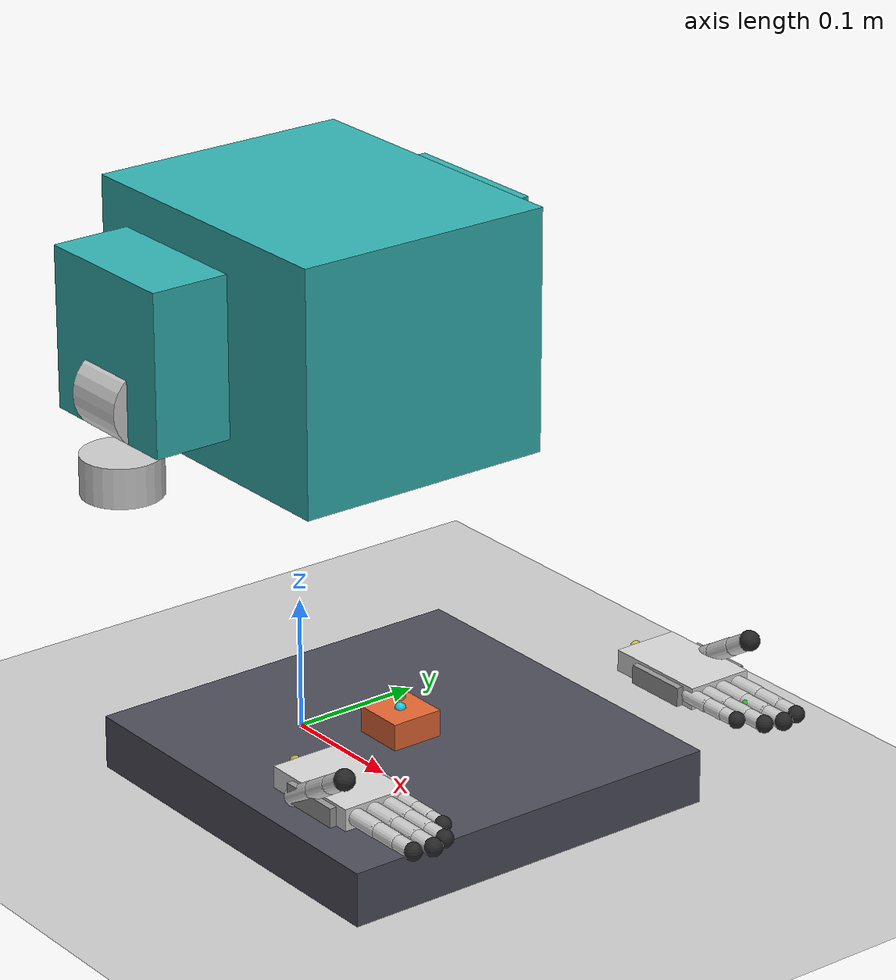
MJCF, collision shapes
<?xml version="1.0" encoding="utf-8"?>
<mujoco model="g1_dual_arm">
  <!-- ===== Limits Ä‘á»ƒ grasp á»•n Ä‘á»‹nh ===== -->
  <size nconmax="500" njmax="7000"/>

  <!-- ===== Compiler / Options / Defaults ===== -->
  <compiler angle="radian" meshdir="meshes" autolimits="true"/>
  <option gravity="0 0 -9.81" integrator="RK4" timestep="0.002"
          cone="elliptic" jacobian="dense" iterations="140" tolerance="2.0e-11"/>

  <default>
    <!-- ná»n chung -->
    <geom friction="1.0 0.1 0.01" solref="0.004 1.8" solimp="0.94 0.998 0.0003" rgba="0.8 0.8 0.8 1"/>
    <joint damping="0.35" stiffness="8" frictionloss="0.02" armature="0.01" limited="true"/>

    <!-- Finger links -->
    <default class="finger">
      <joint damping="0.30" stiffness="3.0" armature="0.02" frictionloss="0.02" limited="true"/>
      <geom  friction="2.6 0.06 0.004" solref="0.003 2.6" solimp="0.97 0.997 0.0003"
             condim="6" rgba="0.90 0.90 0.92 1"/>
    </default>

    <!-- Fingertip pads (ma sÃ¡t cao + compliance má»ng) -->
    <default class="pad">
      <geom friction="9.5 0.12 0.020"
            solref="0.0012 4.2"
            solimp="0.986 0.999 0.00010"
            margin="0.0016"
            condim="6" rgba="0.15 0.15 0.15 1"
            contype="1" conaffinity="1"/>
    </default>

    <!-- Palm collision (Ãªm, tÃ¡ch nhÃ³m va cháº¡m Ä‘á»ƒ khÃ´ng cáº¡ cube) -->
    <default class="palm">
      <geom friction="2.2 0.03 0.003" condim="6"
            solref="0.0022 2.6" solimp="0.965 0.996 0.00035"
            rgba="0.6 0.6 0.6 0.35"
            contype="2" conaffinity="2"/>
    </default>

    <!-- Arm joints -->
    <default class="armjoint">
      <joint damping="1.6" armature="0.06" frictionloss="0.04" stiffness="8" limited="true"/>
    </default>

    <!-- Torso collision shell (Ä‘á»¡ xuyÃªn ngÆ°á»i) -->
    <default class="torso_col">
      <geom type="box" rgba="0.2 0.7 0.7 0.15"
            friction="1.0 0.02 0.001" condim="6"
            solref="0.003 2.2" solimp="0.97 0.998 0.0003"/>
    </default>
  </default>

  <!-- ===== Assets / Meshes ===== -->
  <asset>
    <texture type="skybox" builtin="flat" rgb1="0 0 0" rgb2="0 0 0" width="512" height="3072"/>
    <texture type="2d" name="groundplane" builtin="checker" mark="edge"
             rgb1="0.2 0.3 0.4" rgb2="0.1 0.2 0.3" markrgb="0.8 0.8 0.8" width="300" height="300"/>
    <material name="groundplane" texture="groundplane" texuniform="true" texrepeat="5 5" reflectance="0.2"/>

    <!-- visual meshes -->
    <mesh name="waist_yaw_link"            file="waist_yaw_link.STL"/>
    <mesh name="waist_roll_link"           file="waist_roll_link.STL"/>
    <mesh name="torso_link"                file="torso_link.STL"/>
    <mesh name="logo_link"                 file="logo_link.STL"/>
    <mesh name="head_link"                 file="head_link.STL"/>
    <mesh name="waist_support_link"        file="waist_support_link.STL"/>
    <mesh name="left_shoulder_pitch_link"  file="left_shoulder_pitch_link.STL"/>
    <mesh name="left_shoulder_roll_link"   file="left_shoulder_roll_link.STL"/>
    <mesh name="left_shoulder_yaw_link"    file="left_shoulder_yaw_link.STL"/>
    <mesh name="left_elbow_link"           file="left_elbow_link.STL"/>
    <mesh name="left_wrist_roll_link"      file="left_wrist_roll_link.STL"/>
    <mesh name="left_wrist_pitch_link"     file="left_wrist_pitch_link.STL"/>
    <mesh name="left_wrist_yaw_link"       file="left_wrist_yaw_link.STL"/>
    <mesh name="left_rubber_hand"          file="left_rubber_hand.STL"/>
    <mesh name="right_shoulder_pitch_link" file="right_shoulder_pitch_link.STL"/>
    <mesh name="right_shoulder_roll_link"  file="right_shoulder_roll_link.STL"/>
    <mesh name="right_shoulder_yaw_link"   file="right_shoulder_yaw_link.STL"/>
    <mesh name="right_elbow_link"          file="right_elbow_link.STL"/>
    <mesh name="right_wrist_roll_link"     file="right_wrist_roll_link.STL"/>
    <mesh name="right_wrist_pitch_link"    file="right_wrist_pitch_link.STL"/>
    <mesh name="right_wrist_yaw_link"      file="right_wrist_yaw_link.STL"/>
    <mesh name="right_rubber_hand"         file="right_rubber_hand.STL"/>
  </asset>

  <!-- ===== Visual / Stat ===== -->
  <visual>
    <headlight diffuse="0.6 0.6 0.6" ambient="0.1 0.1 0.1" specular="0.9 0.9 0.9"/>
    <rgba haze="0.15 0.25 0.35 1"/>
    <global azimuth="-140" elevation="-20"/>
  </visual>
  <statistic center="1.0 0.7 1.0" extent="0.8"/>

  <!-- ===== Worldbody ===== -->
  <worldbody>
    <light pos="1 0 3.5" dir="0 0 -1" directional="true"/>
    <geom name="floor" size="0 0 0.05" type="plane" material="groundplane"/>

    <!-- Fixed base visuals (no collision) -->
    <geom type="mesh" contype="0" conaffinity="0" group="1" density="0" mesh="waist_yaw_link"/>
    <geom pos="-0.0039635 0 0.035" type="mesh" contype="0" conaffinity="0" group="1" density="0" mesh="waist_roll_link"/>
    <geom pos="-0.0039635 0 0.054" type="mesh" contype="0" conaffinity="0" group="1" density="0" mesh="torso_link"/>
    <geom type="mesh" contype="0" conaffinity="0" group="1" density="0" rgba="0.2 0.2 0.2 1" mesh="logo_link"/>
    <geom type="mesh" contype="0" conaffinity="0" group="1" density="0" rgba="0.2 0.2 0.2 1" mesh="head_link"/>
    <geom type="mesh" contype="0" conaffinity="0" group="1" density="0" mesh="waist_support_link"/>

    <!-- Torso collision shells -->
    <geom class="torso_col" name="torso_col_main" size="0.12 0.10 0.09" pos="0.03 0.00 0.33"/>
    <geom class="torso_col" name="torso_col_l"    size="0.06 0.03 0.06" pos="0.00  0.13 0.33"/>
    <geom class="torso_col" name="torso_col_r"    size="0.06 0.03 0.06" pos="0.00 -0.13 0.33"/>

    <!-- Plate -->
    <geom name="plate" type="box" size="0.15 0.15 0.02" pos="0.12 0.00 0.02" rgba="0.3 0.3 0.35 1"
          friction="0.9 0.01 0.001" solref="0.003 3" solimp="0.95 0.999 0.0002" condim="6"/>
    <site name="plate_top" pos="0.12 0.00 0.04" size="0.005" type="sphere" rgba="0.2 0.7 0.9 0.7"/>

    <!-- Grasp object (cube cháº¡m máº·t plate) -->
    <body name="grasp_cube" pos="0.12 0.00 0.0400">
      <joint name="grasp_cube_free" type="free"/>
      <geom name="grasp_cube_geom" type="box" size="0.02 0.02 0.02"
            mass="0.08" rgba="0.9 0.4 0.2 1.0"
            friction="2.6 0.03 0.003" condim="6"
            solref="0.0018 3.2" solimp="0.955 0.999 0.00018"
            contype="1" conaffinity="1"/>
      <site name="cube_top" pos="0 0 0.02" size="0.004" rgba="0.1 0.8 0.9 1"/>
      <site name="cube_grasp_target" pos="0 0 0.030" size="0.004" rgba="0.2 0.9 0.2 0.8"/>
    </body>

    <!-- ================= LEFT ARM ================= -->
    <!-- (nguyÃªn khá»‘i cÃ¡nh tay nhÆ° báº¡n Ä‘Ã£ cÃ³; khÃ´ng Ä‘á»•i hÃ¬nh há»c) -->
    <!-- Báº¯t Ä‘áº§u LEFT ARM -->
    <body name="left_shoulder_pitch_link" pos="-7.2e-06 0.10022 0.29178" quat="0.990264 0.139201 1.38722e-05 -9.86868e-05">
      <inertial pos="0 0.035892 -0.011628" quat="0.654152 0.0130458 -0.326267 0.68225" mass="0.718"
                diaginertia="0.000465864 0.000432842 0.000406394"/>
      <joint class="armjoint" name="left_shoulder_pitch_joint" pos="0 0 0" axis="0 1 0" range="-2.2 1.6"/>
      <geom type="mesh" group="1" mesh="left_shoulder_pitch_link" contype="0" conaffinity="0"/>
      <geom size="0.03 0.025" pos="0 0.04 -0.01" quat="0.707107 0 0.707107 0" type="cylinder"/>

      <body name="left_shoulder_roll_link" pos="0 0.038 -0.013831" quat="0.990268 -0.139172 0 0">
        <inertial pos="-0.000227 0.00727 -0.063243" quat="0.701256 -0.0196223 -0.00710317 0.712604" mass="0.643"
                  diaginertia="0.000691311 0.000618011 0.000388977"/>
        <joint class="armjoint" name="left_shoulder_roll_joint" pos="0 0 0" axis="1 0 0" range="-1.2 1.2"/>
        <geom type="mesh" group="1" mesh="left_shoulder_roll_link" contype="0" conaffinity="0"/>
        <geom size="0.03 0.015" pos="-0.004 0.006 -0.053" type="cylinder"/>

        <body name="left_shoulder_yaw_link" pos="0 0.00624 -0.1032">
          <inertial pos="0.010773 -0.002949 -0.072009" quat="0.716879 -0.0964829 -0.0679942 0.687134" mass="0.734"
                    diaginertia="0.00106187 0.00103217 0.000400661"/>
          <joint class="armjoint" name="left_shoulder_yaw_joint" pos="0 0 0" axis="0 0 1" range="-2.0 2.0"/>
          <geom type="mesh" group="1" mesh="left_shoulder_yaw_link" contype="0" conaffinity="0"/>

          <body name="left_elbow_link" pos="0.015783 0 -0.080518">
            <inertial pos="0.064956 0.004454 -0.010062" quat="0.541765 0.636132 0.388821 0.388129" mass="0.6"
                      diaginertia="0.000443035 0.000421612 0.000259353"/>
            <joint class="armjoint" name="left_elbow_joint" pos="0 0 0" axis="0 1 0" range="0.0 2.0"/>
            <geom type="mesh" group="1" mesh="left_elbow_link" contype="0" conaffinity="0"/>

            <body name="left_wrist_roll_link" pos="0.1 0.00188791 -0.01">
              <inertial pos="0.0171394 0.000537591 4.8864e-07" quat="0.575338 0.411667 -0.574906 0.411094" mass="0.085445"
                        diaginertia="5.48211e-05 4.96646e-05 3.57798e-05"/>
              <joint class="armjoint" name="left_wrist_roll_joint" pos="0 0 0" axis="1 0 0" range="-1.6 1.6"/>
              <geom type="mesh" group="1" mesh="left_wrist_roll_link" contype="0" conaffinity="0"/>

              <body name="left_wrist_pitch_link" pos="0.038 0 0">
                <inertial pos="0.0229999 -0.00111685 -0.00111658" quat="0.249998 0.661363 0.293036 0.643608" mass="0.48405"
                          diaginertia="0.000430353 0.000429873 0.000164648"/>
                <joint class="armjoint" name="left_wrist_pitch_joint" pos="0 0 0" axis="0 1 0" range="-1.2 1.2"/>
                <geom type="mesh" group="1" mesh="left_wrist_pitch_link" contype="0" conaffinity="0"/>

                <body name="left_wrist_yaw_link" pos="0.046 0 0">
                  <inertial pos="0.0708244 0.000191745 0.00161742" quat="0.510571 0.526295 0.468078 0.493188" mass="0.254576"
                            diaginertia="0.000646113 0.000559993 0.000147566"/>
                  <joint class="armjoint" name="left_wrist_yaw_joint" pos="0 0 0" axis="0 0 1" range="-1.2 1.2"/>
                  <geom type="mesh" group="1" mesh="left_wrist_yaw_link" contype="0" conaffinity="0"/>

                  <!-- left palm -->
                  <geom name="left_palm_base" type="box" size="0.040 0.025 0.008" pos="0.050 0.000 0.000" rgba="0.85 0.85 0.85 1"/>
                  <geom name="left_palm_col"  class="palm" type="box" size="0.038 0.023 0.007" pos="0.050 0.000 -0.001"/>
                  <geom name="left_palm_lipL" class="palm" type="box" size="0.024 0.003 0.007" pos="0.056 0.027 -0.001"/>
                  <geom name="left_palm_lipR" class="palm" type="box" size="0.024 0.003 0.007" pos="0.056 -0.027 -0.001"/>
                  <site name="left_palm_center" pos="0.050 0.000 -0.008" size="0.003" type="sphere" rgba="0.9 0.5 0.1 0.8"/>
                  <site name="left_ee_site" pos="0.120 0 0" size="0.005" type="sphere" rgba="0.2 0.8 0.2 1"/>

                  <!-- Rangefinder sites (LEFT) -->
                  <site name="left_rf_center" pos="0.095 0.000 0.000" quat="0.707107 0 -0.707107 0" size="0.002" rgba="0.60 0.90 0.20 0.80"/>
                  <site name="left_rf_u"      pos="0.095 0.015 0.000" quat="0.707107 0 -0.707107 0" size="0.002" rgba="0.60 0.90 0.20 0.80"/>
                  <site name="left_rf_d"      pos="0.095 -0.015 0.000" quat="0.707107 0 -0.707107 0" size="0.002" rgba="0.60 0.90 0.20 0.80"/>

                  <!-- IMU site -->
                  <site name="left_wrist_imu" pos="0 0 0" size="0.004" type="sphere" rgba="0.8 0.8 0.2 0.8"/>

                  <!-- ===== LEFT HAND (5 fingers) ===== -->
                  <!-- THUMB -->
                  <body name="left_thumb_cmc" pos="0.032 0.024 -0.006" quat="0.9239 0.2588 -0.2588 0.0871">
                    <inertial pos="0 0 0" mass="0.016" diaginertia="1.5e-5 1.5e-5 1.5e-5"/>
                    <joint name="left_thumb_cmc_abd"  type="hinge" axis="0 0 1" range="-0.6 0.8" class="finger"/>
                    <joint name="left_thumb_cmc_flex" type="hinge" axis="1 0 0" range="-0.4 1.0" class="finger"/>

                    <body name="left_thumb_mcp" pos="0 0 0">
                      <joint name="left_thumb_mcp" type="hinge" axis="0 1 0" range="-0.2 1.0" class="finger"/>
                      <geom type="capsule" size="0.0070 0.0130" fromto="0 0 0 0.026 0 0"/>
                      <geom type="capsule" size="0.0062 0.0130" fromto="0.003 0 0 0.026 0 0"/>

                      <body name="left_thumb_pip" pos="0.026 0 0">
                        <joint name="left_thumb_pip" type="hinge" axis="0 1 0" range="0 1.1" class="finger"/>
                        <geom type="capsule" size="0.0068 0.0115" fromto="0 0 0 0.023 0 0"/>
                        <geom type="capsule" size="0.0060 0.0115" fromto="0.003 0 0 0.023 0 0"/>

                        <body name="left_thumb_dip" pos="0.023 0 0">
                          <joint name="left_thumb_dip" type="hinge" axis="0 1 0" range="0 0.9" class="finger"/>
                          <geom type="capsule" size="0.0066 0.0100" fromto="0 0 0 0.020 0 0"/>
                          <geom type="capsule" size="0.0058 0.0100" fromto="0.003 0 0 0.020 0 0"/>
                          <geom name="left_thumb_tip_pad" class="pad" type="sphere" size="0.0075" pos="0.020 0 0"/>
                          <site name="left_thumb_tip" type="sphere" size="0.0040" pos="0.020 0 0" rgba="0.1 0.9 0.1 1"/>
                        </body>
                      </body>
                    </body>
                  </body>

                  <!-- INDEX -->
                  <body name="left_index_mcp_base" pos="0.090 0.016 0.000">
                    <inertial pos="0 0 0" mass="0.014" diaginertia="1.3e-5 1.3e-5 1.3e-5"/>
                    <joint name="left_index_mcp_abd" type="hinge" axis="0 0 1" range="-0.35 0.35" class="finger"/>
                    <body name="left_index_mcp" pos="0 0 0">
                      <joint name="left_index_mcp_flex" type="hinge" axis="0 1 0" range="-0.2 1.45" class="finger"/>
                      <geom type="capsule" size="0.0062 0.0115" fromto="0 0 0 0.023 0 0"/>
                      <geom type="capsule" size="0.0054 0.0115" fromto="0.003 0 0 0.023 0 0"/>
                      <body name="left_index_pip" pos="0.023 0 0">
                        <joint name="left_index_pip" type="hinge" axis="0 1 0" range="0 1.30" class="finger"/>
                        <geom type="capsule" size="0.0059 0.0105" fromto="0 0 0 0.021 0 0"/>
                        <geom type="capsule" size="0.0051 0.0105" fromto="0.003 0 0 0.021 0 0"/>
                        <body name="left_index_dip" pos="0.021 0 0">
                          <joint name="left_index_dip" type="hinge" axis="0 1 0" range="0 1.05" class="finger"/>
                          <geom type="capsule" size="0.0056 0.0085" fromto="0 0 0 0.017 0 0"/>
                          <geom type="capsule" size="0.0048 0.0085" fromto="0.003 0 0 0.017 0 0"/>
                          <geom name="left_index_tip_pad" class="pad" type="sphere" size="0.0063" pos="0.017 0 0"/>
                          <site name="left_index_tip" type="sphere" size="0.0034" pos="0.017 0 0" rgba="0.1 0.9 0.1 1"/>
                        </body>
                      </body>
                    </body>
                  </body>

                  <!-- MIDDLE -->
                  <body name="left_middle_mcp_base" pos="0.090 0.002 0.000">
                    <inertial pos="0 0 0" mass="0.015" diaginertia="1.4e-5 1.4e-5 1.4e-5"/>
                    <joint name="left_middle_mcp_abd" type="hinge" axis="0 0 1" range="-0.25 0.25" class="finger"/>
                    <body name="left_middle_mcp" pos="0 0 0">
                      <joint name="left_middle_mcp_flex" type="hinge" axis="0 1 0" range="-0.25 1.60" class="finger"/>
                      <geom type="capsule" size="0.0064 0.012" fromto="0 0 0 0.024 0 0"/>
                      <geom type="capsule" size="0.0056 0.012" fromto="0.003 0 0 0.024 0 0"/>
                      <body name="left_middle_pip" pos="0.024 0 0">
                        <joint name="left_middle_pip" type="hinge" axis="0 1 0" range="0 1.30" class="finger"/>
                        <geom type="capsule" size="0.0061 0.011" fromto="0 0 0 0.022 0 0"/>
                        <geom type="capsule" size="0.0053 0.011" fromto="0.003 0 0 0.022 0 0"/>
                        <body name="left_middle_dip" pos="0.022 0 0">
                          <joint name="left_middle_dip" type="hinge" axis="0 1 0" range="0 1.05" class="finger"/>
                          <geom type="capsule" size="0.0058 0.009" fromto="0 0 0 0.018 0 0"/>
                          <geom type="capsule" size="0.0050 0.009" fromto="0.003 0 0 0.018 0 0"/>
                          <geom name="left_middle_tip_pad" class="pad" type="sphere" size="0.0065" pos="0.018 0 0"/>
                          <site name="left_middle_tip" type="sphere" size="0.0034" pos="0.018 0 0" rgba="0.1 0.9 0.1 1"/>
                        </body>
                      </body>
                    </body>
                  </body>

                  <!-- RING -->
                  <body name="left_ring_mcp_base" pos="0.088 -0.011 0.000">
                    <inertial pos="0 0 0" mass="0.013" diaginertia="1.2e-5 1.2e-5 1.2e-5"/>
                    <joint name="left_ring_mcp_abd" type="hinge" axis="0 0 1" range="-0.35 0.35" class="finger"/>
                    <body name="left_ring_mcp" pos="0 0 0">
                      <joint name="left_ring_mcp_flex" type="hinge" axis="0 1 0" range="-0.25 1.55" class="finger"/>
                      <geom type="capsule" size="0.0061 0.0115" fromto="0 0 0 0.023 0 0"/>
                      <geom type="capsule" size="0.0053 0.0115" fromto="0.003 0 0 0.023 0 0"/>
                      <body name="left_ring_pip" pos="0.023 0 0">
                        <joint name="left_ring_pip" type="hinge" axis="0 1 0" range="0 1.25" class="finger"/>
                        <geom type="capsule" size="0.0058 0.0105" fromto="0 0 0 0.021 0 0"/>
                        <geom type="capsule" size="0.0050 0.0105" fromto="0.003 0 0 0.021 0 0"/>
                        <body name="left_ring_dip" pos="0.021 0 0">
                          <joint name="left_ring_dip" type="hinge" axis="0 1 0" range="0 1.00" class="finger"/>
                          <geom type="capsule" size="0.0055 0.0085" fromto="0 0 0 0.017 0 0"/>
                          <geom type="capsule" size="0.0047 0.0085" fromto="0.003 0 0 0.017 0 0"/>
                          <geom name="left_ring_tip_pad" class="pad" type="sphere" size="0.0063" pos="0.017 0 0"/>
                          <site name="left_ring_tip" type="sphere" size="0.0034" pos="0.017 0 0" rgba="0.1 0.9 0.1 1"/>
                        </body>
                      </body>
                    </body>
                  </body>

                  <!-- LITTLE -->
                  <body name="left_little_mcp_base" pos="0.084 -0.022 0.000">
                    <inertial pos="0 0 0" mass="0.012" diaginertia="1.1e-5 1.1e-5 1.1e-5"/>
                    <joint name="left_little_mcp_abd" type="hinge" axis="0 0 1" range="-0.4 0.4" class="finger"/>
                    <body name="left_little_mcp" pos="0 0 0">
                      <joint name="left_little_mcp_flex" type="hinge" axis="0 1 0" range="-0.25 1.45" class="finger"/>
                      <geom type="capsule" size="0.0056 0.0095" fromto="0 0 0 0.019 0 0"/>
                      <geom type="capsule" size="0.0048 0.0095" fromto="0.003 0 0 0.019 0 0"/>
                      <body name="left_little_pip" pos="0.019 0 0">
                        <joint name="left_little_pip" type="hinge" axis="0 1 0" range="0 1.20" class="finger"/>
                        <geom type="capsule" size="0.0053 0.008" fromto="0 0 0 0.016 0 0"/>
                        <geom type="capsule" size="0.0045 0.008" fromto="0.003 0 0 0.016 0 0"/>
                        <body name="left_little_dip" pos="0.016 0 0">
                          <joint name="left_little_dip" type="hinge" axis="0 1 0" range="0 0.95" class="finger"/>
                          <geom type="capsule" size="0.0050 0.007" fromto="0 0 0 0.014 0 0"/>
                          <geom type="capsule" size="0.0043 0.007" fromto="0.003 0 0 0.014 0 0"/>
                          <geom name="left_little_tip_pad" class="pad" type="sphere" size="0.0060" pos="0.014 0 0"/>
                          <site name="left_little_tip" type="sphere" size="0.0034" pos="0.014 0 0" rgba="0.1 0.9 0.1 1"/>
                        </body>
                      </body>
                    </body>
                  </body>

                </body> <!-- left_wrist_yaw_link -->
              </body>   <!-- left_wrist_pitch_link -->
            </body>     <!-- left_wrist_roll_link -->
          </body>       <!-- left_elbow_link -->
        </body>         <!-- left_shoulder_yaw_link -->
      </body>           <!-- left_shoulder_roll_link -->
    </body>             <!-- left_shoulder_pitch_link -->

    <!-- ================= RIGHT ARM ================= -->
    <body name="right_shoulder_pitch_link" pos="-7.2e-06 -0.10021 0.29178" quat="0.990264 -0.139201 1.38722e-05 9.86868e-05">
      <inertial pos="0 -0.035892 -0.011628" quat="0.68225 -0.326267 0.0130458 0.654152" mass="0.718"
                diaginertia="0.000465864 0.000432842 0.000406394"/>
      <joint class="armjoint" name="right_shoulder_pitch_joint" pos="0 0 0" axis="0 1 0" range="-2.2 1.6"/>
      <geom type="mesh" group="1" mesh="right_shoulder_pitch_link" contype="0" conaffinity="0"/>
      <geom size="0.03 0.025" pos="0 -0.04 -0.01" quat="0.707107 0 0.707107 0" type="cylinder"/>

      <body name="right_shoulder_roll_link" pos="0 -0.038 -0.013831" quat="0.990268 0.139172 0 0">
        <inertial pos="-0.000227 -0.00727 -0.063243" quat="0.712604 -0.00710317 -0.0196223 0.701256" mass="0.643"
                  diaginertia="0.000691311 0.000618011 0.000388977"/>
        <joint class="armjoint" name="right_shoulder_roll_joint" pos="0 0 0" axis="1 0 0" range="-1.2 1.2"/>
        <geom type="mesh" group="1" mesh="right_shoulder_roll_link" contype="0" conaffinity="0"/>
        <geom size="0.03 0.015" pos="-0.004 -0.006 -0.053" type="cylinder"/>

        <body name="right_shoulder_yaw_link" pos="0 -0.00624 -0.1032">
          <inertial pos="0.010773 0.002949 -0.072009" quat="0.687134 -0.0679942 -0.0964829 0.716879" mass="0.734"
                    diaginertia="0.00106187 0.00103217 0.000400661"/>
          <joint class="armjoint" name="right_shoulder_yaw_joint" pos="0 0 0" axis="0 0 1" range="-2.0 2.0"/>
          <geom type="mesh" group="1" mesh="right_shoulder_yaw_link" contype="0" conaffinity="0"/>

          <body name="right_elbow_link" pos="0.015783 0 -0.080518">
            <inertial pos="0.064956 -0.004454 -0.010062" quat="0.388129 0.388821 0.636132 0.541765" mass="0.6"
                      diaginertia="0.000443035 0.000421612 0.000259353"/>
            <joint class="armjoint" name="right_elbow_joint" pos="0 0 0" axis="0 1 0" range="0.0 2.0"/>
            <geom type="mesh" group="1" mesh="right_elbow_link" contype="0" conaffinity="0"/>

            <body name="right_wrist_roll_link" pos="0.1 -0.00188791 -0.01">
              <inertial pos="0.0171394 -0.000537591 4.8864e-07" quat="0.411667 0.575338 -0.411094 0.574906" mass="0.085445"
                        diaginertia="5.48211e-05 4.96646e-05 3.57798e-05"/>
              <joint class="armjoint" name="right_wrist_roll_joint" pos="0 0 0" axis="1 0 0" range="-1.6 1.6"/>
              <geom type="mesh" group="1" mesh="right_wrist_roll_link" contype="0" conaffinity="0"/>

              <body name="right_wrist_pitch_link" pos="0.038 0 0">
                <inertial pos="0.0229999 0.00111685 -0.00111658" quat="0.643608 0.293036 0.661363 0.249998" mass="0.48405"
                          diaginertia="0.000430353 0.000429873 0.000164648"/>
                <joint class="armjoint" name="right_wrist_pitch_joint" pos="0 0 0" axis="0 1 0" range="-1.2 1.2"/>
                <geom type="mesh" group="1" mesh="right_wrist_pitch_link" contype="0" conaffinity="0"/>

                <body name="right_wrist_yaw_link" pos="0.046 0 0">
                  <inertial pos="0.0708244 -0.000191745 0.00161742" quat="0.493188 0.468078 0.526295 0.510571" mass="0.254576"
                            diaginertia="0.000646113 0.000559993 0.000147566"/>
                  <joint class="armjoint" name="right_wrist_yaw_joint" pos="0 0 0" axis="0 0 1" range="-1.2 1.2"/>
                  <geom type="mesh" group="1" mesh="right_wrist_yaw_link" contype="0" conaffinity="0"/>

                  <!-- right palm -->
                  <geom name="right_palm_base" type="box" size="0.040 0.025 0.008" pos="0.050 0.000 0.000" rgba="0.85 0.85 0.85 1"/>
                  <geom name="right_palm_col"  class="palm" type="box" size="0.038 0.023 0.007" pos="0.050 0.000 -0.001"/>
                  <geom name="right_palm_lipL" class="palm" type="box" size="0.024 0.003 0.007" pos="0.056 -0.027 -0.001"/>
                  <geom name="right_palm_lipR" class="palm" type="box" size="0.024 0.003 0.007" pos="0.056 0.027 -0.001"/>
                  <site name="right_palm_center" pos="0.050 0.000 -0.008" size="0.003" type="sphere" rgba="0.9 0.5 0.1 0.8"/>
                  <site name="right_ee_site" pos="0.120 0 0" size="0.005" type="sphere" rgba="0.2 0.8 0.2 1"/>

                  <!-- Rangefinder sites (RIGHT) -->
                  <site name="right_rf_center" pos="0.095 0.000 0.000" quat="0.707107 0 -0.707107 0" size="0.002" rgba="0.60 0.90 0.20 0.80"/>
                  <site name="right_rf_u"      pos="0.095 0.015 0.000" quat="0.707107 0 -0.707107 0" size="0.002" rgba="0.60 0.90 0.20 0.80"/>
                  <site name="right_rf_d"      pos="0.095 -0.015 0.000" quat="0.707107 0 -0.707107 0" size="0.002" rgba="0.60 0.90 0.20 0.80"/>

                  <!-- IMU site -->
                  <site name="right_wrist_imu" pos="0 0 0" size="0.004" type="sphere" rgba="0.8 0.8 0.2 0.8"/>

                  <!-- ===== RIGHT HAND ===== -->
                  <!-- THUMB -->
                  <body name="right_thumb_cmc" pos="0.032 -0.024 -0.006" quat="0.9239 -0.2588 -0.2588 -0.0871">
                    <inertial pos="0 0 0" mass="0.016" diaginertia="1.5e-5 1.5e-5 1.5e-5"/>
                    <joint name="right_thumb_cmc_abd"  type="hinge" axis="0 0 1" range="-0.8 0.6" class="finger"/>
                    <joint name="right_thumb_cmc_flex" type="hinge" axis="1 0 0" range="-0.4 1.0" class="finger"/>
                    <body name="right_thumb_mcp" pos="0 0 0">
                      <joint name="right_thumb_mcp" type="hinge" axis="0 1 0" range="-0.2 1.0" class="finger"/>
                      <geom type="capsule" size="0.0070 0.0130" fromto="0 0 0 0.026 0 0"/>
                      <geom type="capsule" size="0.0062 0.0130" fromto="0.003 0 0 0.026 0 0"/>
                      <body name="right_thumb_pip" pos="0.026 0 0">
                        <joint name="right_thumb_pip" type="hinge" axis="0 1 0" range="0 1.1" class="finger"/>
                        <geom type="capsule" size="0.0068 0.0115" fromto="0 0 0 0.023 0 0"/>
                        <geom type="capsule" size="0.0060 0.0115" fromto="0.003 0 0 0.023 0 0"/>
                        <body name="right_thumb_dip" pos="0.023 0 0">
                          <joint name="right_thumb_dip" type="hinge" axis="0 1 0" range="0 0.9" class="finger"/>
                          <geom type="capsule" size="0.0066 0.0100" fromto="0 0 0 0.020 0 0"/>
                          <geom type="capsule" size="0.0058 0.0100" fromto="0.003 0 0 0.020 0 0"/>
                          <geom name="right_thumb_tip_pad" class="pad" type="sphere" size="0.0075" pos="0.020 0 0"/>
                          <site name="right_thumb_tip" type="sphere" size="0.0040" pos="0.020 0 0" rgba="0.1 0.9 0.1 1"/>
                        </body>
                      </body>
                    </body>
                  </body>

                  <!-- INDEX -->
                  <body name="right_index_mcp_base" pos="0.090 -0.016 0.000">
                    <inertial pos="0 0 0" mass="0.014" diaginertia="1.3e-5 1.3e-5 1.3e-5"/>
                    <joint name="right_index_mcp_abd" type="hinge" axis="0 0 1" range="-0.35 0.35" class="finger"/>
                    <body name="right_index_mcp" pos="0 0 0">
                      <joint name="right_index_mcp_flex" type="hinge" axis="0 1 0" range="-0.2 1.45" class="finger"/>
                      <geom type="capsule" size="0.0062 0.0115" fromto="0 0 0 0.023 0 0"/>
                      <geom type="capsule" size="0.0054 0.0115" fromto="0.003 0 0 0.023 0 0"/>
                      <body name="right_index_pip" pos="0.023 0 0">
                        <joint name="right_index_pip" type="hinge" axis="0 1 0" range="0 1.30" class="finger"/>
                        <geom type="capsule" size="0.0059 0.0105" fromto="0 0 0 0.021 0 0"/>
                        <geom type="capsule" size="0.0051 0.0105" fromto="0.003 0 0 0.021 0 0"/>
                        <body name="right_index_dip" pos="0.021 0 0">
                          <joint name="right_index_dip" type="hinge" axis="0 1 0" range="0 1.05" class="finger"/>
                          <geom type="capsule" size="0.0056 0.0085" fromto="0 0 0 0.017 0 0"/>
                          <geom type="capsule" size="0.0048 0.0085" fromto="0.003 0 0 0.017 0 0"/>
                          <geom name="right_index_tip_pad" class="pad" type="sphere" size="0.0063" pos="0.017 0 0"/>
                          <site name="right_index_tip" type="sphere" size="0.0034" pos="0.017 0 0" rgba="0.1 0.9 0.1 1"/>
                        </body>
                      </body>
                    </body>
                  </body>

                  <!-- MIDDLE -->
                  <body name="right_middle_mcp_base" pos="0.090 -0.002 0.000">
                    <inertial pos="0 0 0" mass="0.015" diaginertia="1.4e-5 1.4e-5 1.4e-5"/>
                    <joint name="right_middle_mcp_abd" type="hinge" axis="0 0 1" range="-0.25 0.25" class="finger"/>
                    <body name="right_middle_mcp" pos="0 0 0">
                      <joint name="right_middle_mcp_flex" type="hinge" axis="0 1 0" range="-0.25 1.60" class="finger"/>
                      <geom type="capsule" size="0.0064 0.012" fromto="0 0 0 0.024 0 0"/>
                      <geom type="capsule" size="0.0056 0.012" fromto="0.003 0 0 0.024 0 0"/>
                      <body name="right_middle_pip" pos="0.024 0 0">
                        <joint name="right_middle_pip" type="hinge" axis="0 1 0" range="0 1.30" class="finger"/>
                        <geom type="capsule" size="0.0061 0.011" fromto="0 0 0 0.022 0 0"/>
                        <geom type="capsule" size="0.0053 0.011" fromto="0.003 0 0 0.022 0 0"/>
                        <body name="right_middle_dip" pos="0.022 0 0">
                          <joint name="right_middle_dip" type="hinge" axis="0 1 0" range="0 1.05" class="finger"/>
                          <geom type="capsule" size="0.0058 0.009" fromto="0 0 0 0.018 0 0"/>
                          <geom type="capsule" size="0.0050 0.009" fromto="0.003 0 0 0.018 0 0"/>
                          <geom name="right_middle_tip_pad" class="pad" type="sphere" size="0.0065" pos="0.018 0 0"/>
                          <site name="right_middle_tip" type="sphere" size="0.0034" pos="0.018 0 0" rgba="0.1 0.9 0.1 1"/>
                        </body>
                      </body>
                    </body>
                  </body>

                  <!-- RING -->
                  <body name="right_ring_mcp_base" pos="0.088 0.011 0.000">
                    <inertial pos="0 0 0" mass="0.013" diaginertia="1.2e-5 1.2e-5 1.2e-5"/>
                    <joint name="right_ring_mcp_abd" type="hinge" axis="0 0 1" range="-0.35 0.35" class="finger"/>
                    <body name="right_ring_mcp" pos="0 0 0">
                      <joint name="right_ring_mcp_flex" type="hinge" axis="0 1 0" range="-0.25 1.55" class="finger"/>
                      <geom type="capsule" size="0.0061 0.0115" fromto="0 0 0 0.023 0 0"/>
                      <geom type="capsule" size="0.0053 0.0115" fromto="0.003 0 0 0.023 0 0"/>
                      <body name="right_ring_pip" pos="0.023 0 0">
                        <joint name="right_ring_pip" type="hinge" axis="0 1 0" range="0 1.25" class="finger"/>
                        <geom type="capsule" size="0.0058 0.0105" fromto="0 0 0 0.021 0 0"/>
                        <geom type="capsule" size="0.0050 0.0105" fromto="0.003 0 0 0.021 0 0"/>
                        <body name="right_ring_dip" pos="0.021 0 0">
                          <joint name="right_ring_dip" type="hinge" axis="0 1 0" range="0 1.00" class="finger"/>
                          <geom type="capsule" size="0.0055 0.0085" fromto="0 0 0 0.017 0 0"/>
                          <geom type="capsule" size="0.0047 0.0085" fromto="0.003 0 0 0.017 0 0"/>
                          <geom name="right_ring_tip_pad" class="pad" type="sphere" size="0.0063" pos="0.017 0 0"/>
                          <site name="right_ring_tip" type="sphere" size="0.0034" pos="0.017 0 0" rgba="0.1 0.9 0.1 1"/>
                        </body>
                      </body>
                    </body>
                  </body>

                  <!-- LITTLE -->
                  <body name="right_little_mcp_base" pos="0.084 0.022 0.000">
                    <inertial pos="0 0 0" mass="0.012" diaginertia="1.1e-5 1.1e-5 1.1e-5"/>
                    <joint name="right_little_mcp_abd" type="hinge" axis="0 0 1" range="-0.4 0.4" class="finger"/>
                    <body name="right_little_mcp" pos="0 0 0">
                      <joint name="right_little_mcp_flex" type="hinge" axis="0 1 0" range="-0.25 1.45" class="finger"/>
                      <geom type="capsule" size="0.0056 0.0095" fromto="0 0 0 0.019 0 0"/>
                      <geom type="capsule" size="0.0048 0.0095" fromto="0.003 0 0 0.019 0 0"/>
                      <body name="right_little_pip" pos="0.019 0 0">
                        <joint name="right_little_pip" type="hinge" axis="0 1 0" range="0 1.20" class="finger"/>
                        <geom type="capsule" size="0.0053 0.008" fromto="0 0 0 0.016 0 0"/>
                        <geom type="capsule" size="0.0045 0.008" fromto="0.003 0 0 0.016 0 0"/>
                        <body name="right_little_dip" pos="0.016 0 0">
                          <joint name="right_little_dip" type="hinge" axis="0 1 0" range="0 0.95" class="finger"/>
                          <geom type="capsule" size="0.0050 0.007" fromto="0 0 0 0.014 0 0"/>
                          <geom type="capsule" size="0.0043 0.007" fromto="0.003 0 0 0.014 0 0"/>
                          <geom name="right_little_tip_pad" class="pad" type="sphere" size="0.0060" pos="0.014 0 0"/>
                          <site name="right_little_tip" type="sphere" size="0.0034" pos="0.014 0 0" rgba="0.1 0.9 0.1 1"/>
                        </body>
                      </body>
                    </body>
                  </body>

                </body> <!-- right_wrist_yaw_link -->
              </body>   <!-- right_wrist_pitch_link -->
            </body>     <!-- right_wrist_roll_link -->
          </body>       <!-- right_elbow_link -->
        </body>         <!-- right_shoulder_yaw_link -->
      </body>           <!-- right_shoulder_roll_link -->
    </body>             <!-- right_shoulder_pitch_link -->
  </worldbody>

    <!-- ===== Contact filters & pairs (MuJoCo 3.x) ===== -->
  <contact>
    <!-- SELF finger adjacency (giảm jitter) -->
    <!-- LEFT -->
    <exclude body1="left_thumb_cmc" body2="left_index_mcp_base"/>
    <exclude body1="left_index_mcp_base" body2="left_middle_mcp_base"/>
    <exclude body1="left_middle_mcp_base" body2="left_ring_mcp_base"/>
    <exclude body1="left_ring_mcp_base"  body2="left_little_mcp_base"/>
    <!-- RIGHT -->
    <exclude body1="right_thumb_cmc" body2="right_index_mcp_base"/>
    <exclude body1="right_index_mcp_base" body2="right_middle_mcp_base"/>
    <exclude body1="right_middle_mcp_base" body2="right_ring_mcp_base"/>
    <exclude body1="right_ring_mcp_base"  body2="right_little_mcp_base"/>

    <!-- pad ↔ cube (bám chắc) -->
    <pair geom1="right_thumb_tip_pad"  geom2="grasp_cube_geom" friction="12.0 0.15 0.035" solref="0.0010 5.0" solimp="0.988 0.999 0.00008" condim="6"/>
    <pair geom1="right_index_tip_pad"  geom2="grasp_cube_geom" friction="12.0 0.15 0.035" solref="0.0010 5.0" solimp="0.988 0.999 0.00008" condim="6"/>
    <pair geom1="right_middle_tip_pad" geom2="grasp_cube_geom" friction="12.0 0.15 0.035" solref="0.0010 5.0" solimp="0.988 0.999 0.00008" condim="6"/>
    <pair geom1="right_ring_tip_pad"   geom2="grasp_cube_geom" friction="12.0 0.15 0.035" solref="0.0010 5.0" solimp="0.988 0.999 0.00008" condim="6"/>
    <pair geom1="right_little_tip_pad" geom2="grasp_cube_geom" friction="12.0 0.15 0.035" solref="0.0010 5.0" solimp="0.988 0.999 0.00008" condim="6"/>

    <pair geom1="left_thumb_tip_pad"   geom2="grasp_cube_geom" friction="12.0 0.15 0.035" solref="0.0010 5.0" solimp="0.988 0.999 0.00008" condim="6"/>
    <pair geom1="left_index_tip_pad"   geom2="grasp_cube_geom" friction="12.0 0.15 0.035" solref="0.0010 5.0" solimp="0.988 0.999 0.00008" condim="6"/>
    <pair geom1="left_middle_tip_pad"  geom2="grasp_cube_geom" friction="12.0 0.15 0.035" solref="0.0010 5.0" solimp="0.988 0.999 0.00008" condim="6"/>
    <pair geom1="left_ring_tip_pad"    geom2="grasp_cube_geom" friction="12.0 0.15 0.035" solref="0.0010 5.0" solimp="0.988 0.999 0.00008" condim="6"/>
    <pair geom1="left_little_tip_pad"  geom2="grasp_cube_geom" friction="12.0 0.15 0.035" solref="0.0010 5.0" solimp="0.988 0.999 0.00008" condim="6"/>

    <!-- pad ↔ plate (giảm dính khi nhấc) -->
    <pair geom1="right_thumb_tip_pad"  geom2="plate" friction="0.6 0.01 0.001" solref="0.0018 3.0" solimp="0.97 0.999 0.00020" condim="6"/>
    <pair geom1="right_index_tip_pad"  geom2="plate" friction="0.6 0.01 0.001" solref="0.0018 3.0" solimp="0.97 0.999 0.00020" condim="6"/>
    <pair geom1="right_middle_tip_pad" geom2="plate" friction="0.6 0.01 0.001" solref="0.0018 3.0" solimp="0.97 0.999 0.00020" condim="6"/>
    <pair geom1="right_ring_tip_pad"   geom2="plate" friction="0.6 0.01 0.001" solref="0.0018 3.0" solimp="0.97 0.999 0.00020" condim="6"/>
    <pair geom1="right_little_tip_pad" geom2="plate" friction="0.6 0.01 0.001" solref="0.0018 3.0" solimp="0.97 0.999 0.00020" condim="6"/>

    <pair geom1="left_thumb_tip_pad"   geom2="plate" friction="0.6 0.01 0.001" solref="0.0018 3.0" solimp="0.97 0.999 0.00020" condim="6"/>
    <pair geom1="left_index_tip_pad"   geom2="plate" friction="0.6 0.01 0.001" solref="0.0018 3.0" solimp="0.97 0.999 0.00020" condim="6"/>
    <pair geom1="left_middle_tip_pad"  geom2="plate" friction="0.6 0.01 0.001" solref="0.0018 3.0" solimp="0.97 0.999 0.00020" condim="6"/>
    <pair geom1="left_ring_tip_pad"    geom2="plate" friction="0.6 0.01 0.001" solref="0.0018 3.0" solimp="0.97 0.999 0.00020" condim="6"/>
    <pair geom1="left_little_tip_pad"  geom2="plate" friction="0.6 0.01 0.001" solref="0.0018 3.0" solimp="0.97 0.999 0.00020" condim="6"/>
  </contact>

  <!-- ===== Finger coupling: DIP â‰ˆ 0.80 * PIP ===== -->
  <equality>
    <!-- LEFT -->
    <joint joint1="left_thumb_pip"  joint2="left_thumb_dip"  polycoef="0 0.80 0 0 0"/>
    <joint joint1="left_index_pip"  joint2="left_index_dip"  polycoef="0 0.80 0 0 0"/>
    <joint joint1="left_middle_pip" joint2="left_middle_dip" polycoef="0 0.80 0 0 0"/>
    <joint joint1="left_ring_pip"   joint2="left_ring_dip"   polycoef="0 0.80 0 0 0"/>
    <joint joint1="left_little_pip" joint2="left_little_dip" polycoef="0 0.80 0 0 0"/>
    <!-- RIGHT -->
    <joint joint1="right_thumb_pip"  joint2="right_thumb_dip"  polycoef="0 0.80 0 0 0"/>
    <joint joint1="right_index_pip"  joint2="right_index_dip"  polycoef="0 0.80 0 0 0"/>
    <joint joint1="right_middle_pip" joint2="right_middle_dip" polycoef="0 0.80 0 0 0"/>
    <joint joint1="right_ring_pip"   joint2="right_ring_dip"   polycoef="0 0.80 0 0 0"/>
    <joint joint1="right_little_pip" joint2="right_little_dip" polycoef="0 0.80 0 0 0"/>
  </equality>

  <!-- ===== Tendon synergies (thÃªm adduction bias Ä‘á»ƒ tá»± chá»¥m) ===== -->
  <tendon>
    <!-- LEFT fingers -->
    <fixed name="left_thumb_synergy" limited="true" range="-0.35 0.35">
      <joint joint="left_thumb_mcp" coef="-1.0"/>
      <joint joint="left_thumb_pip" coef="-0.8"/>
      <joint joint="left_thumb_dip" coef="-0.55"/>
    </fixed>
    <fixed name="left_index_synergy" limited="true" range="-0.35 0.35">
      <joint joint="left_index_mcp_abd"  coef="-0.15"/>
      <joint joint="left_index_mcp_flex" coef="-1.0"/>
      <joint joint="left_index_pip"      coef="-0.8"/>
      <joint joint="left_index_dip"      coef="-0.55"/>
    </fixed>
    <fixed name="left_middle_synergy" limited="true" range="-0.35 0.35">
      <joint joint="left_middle_mcp_abd"  coef="-0.10"/>
      <joint joint="left_middle_mcp_flex" coef="-1.0"/>
      <joint joint="left_middle_pip"      coef="-0.8"/>
      <joint joint="left_middle_dip"      coef="-0.55"/>
    </fixed>
    <fixed name="left_ring_synergy" limited="true" range="-0.35 0.35">
      <joint joint="left_ring_mcp_abd"  coef="-0.15"/>
      <joint joint="left_ring_mcp_flex" coef="-0.95"/>
      <joint joint="left_ring_pip"      coef="-0.80"/>
      <joint joint="left_ring_dip"      coef="-0.55"/>
    </fixed>
    <fixed name="left_little_synergy" limited="true" range="-0.35 0.35">
      <joint joint="left_little_mcp_abd"  coef="-0.20"/>
      <joint joint="left_little_mcp_flex" coef="-0.90"/>
      <joint joint="left_little_pip"      coef="-0.70"/>
      <joint joint="left_little_dip"      coef="-0.50"/>
    </fixed>

    <!-- RIGHT fingers -->
    <fixed name="right_thumb_synergy" limited="true" range="-0.35 0.35">
      <joint joint="right_thumb_mcp" coef="-1.0"/>
      <joint joint="right_thumb_pip" coef="-0.8"/>
      <joint joint="right_thumb_dip" coef="-0.55"/>
    </fixed>
    <fixed name="right_index_synergy" limited="true" range="-0.35 0.35">
      <joint joint="right_index_mcp_abd"  coef="-0.15"/>
      <joint joint="right_index_mcp_flex" coef="-1.0"/>
      <joint joint="right_index_pip"      coef="-0.8"/>
      <joint joint="right_index_dip"      coef="-0.55"/>
    </fixed>
    <fixed name="right_middle_synergy" limited="true" range="-0.35 0.35">
      <joint joint="right_middle_mcp_abd"  coef="-0.10"/>
      <joint joint="right_middle_mcp_flex" coef="-1.0"/>
      <joint joint="right_middle_pip"      coef="-0.8"/>
      <joint joint="right_middle_dip"      coef="-0.55"/>
    </fixed>
    <fixed name="right_ring_synergy" limited="true" range="-0.35 0.35">
      <joint joint="right_ring_mcp_abd"  coef="-0.15"/>
      <joint joint="right_ring_mcp_flex" coef="-0.95"/>
      <joint joint="right_ring_pip"      coef="-0.80"/>
      <joint joint="right_ring_dip"      coef="-0.55"/>
    </fixed>
    <fixed name="right_little_synergy" limited="true" range="-0.35 0.35">
      <joint joint="right_little_mcp_abd"  coef="-0.20"/>
      <joint joint="right_little_mcp_flex" coef="-0.90"/>
      <joint joint="right_little_pip"      coef="-0.70"/>
      <joint joint="right_little_dip"      coef="-0.50"/>
    </fixed>

    <!-- FIST tendon (Ä‘Ã³ng cáº£ bÃ n) -->
    <fixed name="left_fist_synergy" limited="true" range="-0.32 0.32">
      <joint joint="left_thumb_mcp" coef="-0.8"/>
      <joint joint="left_thumb_pip" coef="-0.6"/>
      <joint joint="left_thumb_dip" coef="-0.4"/>
      <joint joint="left_index_mcp_flex" coef="-1.0"/>
      <joint joint="left_index_pip" coef="-0.8"/>
      <joint joint="left_index_dip" coef="-0.6"/>
      <joint joint="left_middle_mcp_flex" coef="-1.0"/>
      <joint joint="left_middle_pip" coef="-0.8"/>
      <joint joint="left_middle_dip" coef="-0.6"/>
      <joint joint="left_ring_mcp_flex" coef="-0.9"/>
      <joint joint="left_ring_pip" coef="-0.75"/>
      <joint joint="left_ring_dip" coef="-0.55"/>
      <joint joint="left_little_mcp_flex" coef="-0.8"/>
      <joint joint="left_little_pip" coef="-0.6"/>
      <joint joint="left_little_dip" coef="-0.4"/>
    </fixed>

    <fixed name="right_fist_synergy" limited="true" range="-0.32 0.32">
      <joint joint="right_thumb_mcp" coef="-0.8"/>
      <joint joint="right_thumb_pip" coef="-0.6"/>
      <joint joint="right_thumb_dip" coef="-0.4"/>
      <joint joint="right_index_mcp_flex" coef="-1.0"/>
      <joint joint="right_index_pip" coef="-0.8"/>
      <joint joint="right_index_dip" coef="-0.6"/>
      <joint joint="right_middle_mcp_flex" coef="-1.0"/>
      <joint joint="right_middle_pip" coef="-0.8"/>
      <joint joint="right_middle_dip" coef="-0.6"/>
      <joint joint="right_ring_mcp_flex" coef="-0.9"/>
      <joint joint="right_ring_pip" coef="-0.75"/>
      <joint joint="right_ring_dip" coef="-0.55"/>
      <joint joint="right_little_mcp_flex" coef="-0.8"/>
      <joint joint="right_little_pip" coef="-0.6"/>
      <joint joint="right_little_dip" coef="-0.4"/>
    </fixed>
  </tendon>

  <!-- ===== Actuators ===== -->
  <actuator>
    <!-- ARMS (group=1) -->
    <motor name="left_shoulder_pitch_act" joint="left_shoulder_pitch_joint" ctrllimited="true" ctrlrange="-1 1" gear="120" group="1"/>
    <motor name="left_shoulder_roll_act"  joint="left_shoulder_roll_joint"  ctrllimited="true" ctrlrange="-1 1" gear="120" group="1"/>
    <motor name="left_shoulder_yaw_act"   joint="left_shoulder_yaw_joint"   ctrllimited="true" ctrlrange="-1 1" gear="110" group="1"/>
    <motor name="left_elbow_act"          joint="left_elbow_joint"          ctrllimited="true" ctrlrange="-1 1" gear="110" group="1"/>
    <motor name="left_wrist_roll_act"     joint="left_wrist_roll_joint"     ctrllimited="true" ctrlrange="-1 1" gear="90"  group="1"/>
    <motor name="left_wrist_pitch_act"    joint="left_wrist_pitch_joint"    ctrllimited="true" ctrlrange="-1 1" gear="90"  group="1"/>
    <motor name="left_wrist_yaw_act"      joint="left_wrist_yaw_joint"      ctrllimited="true" ctrlrange="-1 1" gear="90"  group="1"/>

    <motor name="right_shoulder_pitch_act" joint="right_shoulder_pitch_joint" ctrllimited="true" ctrlrange="-1 1" gear="120" group="1"/>
    <motor name="right_shoulder_roll_act"  joint="right_shoulder_roll_joint"  ctrllimited="true" ctrlrange="-1 1" gear="120" group="1"/>
    <motor name="right_shoulder_yaw_act"   joint="right_shoulder_yaw_joint"   ctrllimited="true" ctrlrange="-1 1" gear="110" group="1"/>
    <motor name="right_elbow_act"          joint="right_elbow_joint"          ctrllimited="true" ctrlrange="-1 1" gear="110" group="1"/>
    <motor name="right_wrist_roll_act"     joint="right_wrist_roll_joint"     ctrllimited="true" ctrlrange="-1 1" gear="90"  group="1"/>
    <motor name="right_wrist_pitch_act"    joint="right_wrist_pitch_joint"    ctrllimited="true" ctrlrange="-1 1" gear="90"  group="1"/>
    <motor name="right_wrist_yaw_act"      joint="right_wrist_yaw_joint"      ctrllimited="true" ctrlrange="-1 1" gear="90"  group="1"/>

    <!-- FINGER SYNERGIES (group=2) -->
    <general name="left_thumb_close"  tendon="left_thumb_synergy"  dyntype="none" gainprm="1900" biasprm="0" ctrlrange="-0.28 0.28" group="2"/>
    <general name="left_index_close"  tendon="left_index_synergy"  dyntype="none" gainprm="1800" biasprm="0" ctrlrange="-0.28 0.28" group="2"/>
    <general name="left_middle_close" tendon="left_middle_synergy" dyntype="none" gainprm="1800" biasprm="0" ctrlrange="-0.28 0.28" group="2"/>
    <general name="left_ring_close"   tendon="left_ring_synergy"   dyntype="none" gainprm="1750" biasprm="0" ctrlrange="-0.28 0.28" group="2"/>
    <general name="left_little_close" tendon="left_little_synergy" dyntype="none" gainprm="1700" biasprm="0" ctrlrange="-0.28 0.28" group="2"/>

    <general name="right_thumb_close"  tendon="right_thumb_synergy"  dyntype="none" gainprm="1900" biasprm="0" ctrlrange="-0.28 0.28" group="2"/>
    <general name="right_index_close"  tendon="right_index_synergy"  dyntype="none" gainprm="1800" biasprm="0" ctrlrange="-0.28 0.28" group="2"/>
    <general name="right_middle_close" tendon="right_middle_synergy" dyntype="none" gainprm="1800" biasprm="0" ctrlrange="-0.28 0.28" group="2"/>
    <general name="right_ring_close"   tendon="right_ring_synergy"   dyntype="none" gainprm="1750" biasprm="0" ctrlrange="-0.28 0.28" group="2"/>
    <general name="right_little_close" tendon="right_little_synergy" dyntype="none" gainprm="1700" biasprm="0" ctrlrange="-0.28 0.28" group="2"/>

    <!-- FIST MACRO (group=3) -->
    <general name="left_fist"  tendon="left_fist_synergy"  dyntype="none" gainprm="2600" biasprm="0" ctrlrange="-0.26 0.26" group="3"/>
    <general name="right_fist" tendon="right_fist_synergy" dyntype="none" gainprm="2600" biasprm="0" ctrlrange="-0.26 0.26" group="3"/>
  </actuator>

  <!-- ===== Sensors ===== -->
  <sensor>
    <!-- EE pose/vel/wrench -->
    <framepos    name="left_ee_pos"     objtype="site" objname="left_ee_site"/>
    <framequat   name="left_ee_quat"    objtype="site" objname="left_ee_site"/>
    <framelinvel name="left_ee_linvel"  objtype="site" objname="left_ee_site"/>
    <frameangvel name="left_ee_angvel"  objtype="site" objname="left_ee_site"/>
    <force       name="left_ee_force"   site="left_ee_site"/>
    <torque      name="left_ee_torque"  site="left_ee_site"/>

    <framepos    name="right_ee_pos"     objtype="site" objname="right_ee_site"/>
    <framequat   name="right_ee_quat"    objtype="site" objname="right_ee_site"/>
    <framelinvel name="right_ee_linvel"  objtype="site" objname="right_ee_site"/>
    <frameangvel name="right_ee_angvel"  objtype="site" objname="right_ee_site"/>
    <force       name="right_ee_force"   site="right_ee_site"/>
    <torque      name="right_ee_torque"  site="right_ee_site"/>

    <!-- EE linear acceleration -->
    <accelerometer name="left_ee_acc"  site="left_ee_site"/>
    <accelerometer name="right_ee_acc" site="right_ee_site"/>

    <!-- IMU (acc + gyro) á»Ÿ cá»• tay -->
    <accelerometer name="left_wrist_acc"  site="left_wrist_imu"/>
    <gyro          name="left_wrist_gyro" site="left_wrist_imu"/>
    <accelerometer name="right_wrist_acc" site="right_wrist_imu"/>
    <gyro          name="right_wrist_gyro" site="right_wrist_imu"/>

    <!-- Privileged subtree -->
    <subtreecom     name="left_arm_com"   body="left_shoulder_pitch_link"/>
    <subtreelinvel  name="left_arm_vlin"  body="left_shoulder_pitch_link"/>
    <subtreeangmom  name="left_arm_amom"  body="left_shoulder_pitch_link"/>
    <subtreecom     name="right_arm_com"  body="right_shoulder_pitch_link"/>
    <subtreelinvel  name="right_arm_vlin" body="right_shoulder_pitch_link"/>
    <subtreeangmom  name="right_arm_amom" body="right_shoulder_pitch_link"/>

    <!-- Actuator forces -->
    <actuatorfrc name="l_sh_pitch_tau" actuator="left_shoulder_pitch_act"/>
    <actuatorfrc name="l_sh_roll_tau"  actuator="left_shoulder_roll_act"/>
    <actuatorfrc name="l_sh_yaw_tau"   actuator="left_shoulder_yaw_act"/>
    <actuatorfrc name="l_elb_tau"      actuator="left_elbow_act"/>
    <actuatorfrc name="l_w_roll_tau"   actuator="left_wrist_roll_act"/>
    <actuatorfrc name="l_w_pitch_tau"  actuator="left_wrist_pitch_act"/>
    <actuatorfrc name="l_w_yaw_tau"    actuator="left_wrist_yaw_act"/>

    <actuatorfrc name="r_sh_pitch_tau" actuator="right_shoulder_pitch_act"/>
    <actuatorfrc name="r_sh_roll_tau"  actuator="right_shoulder_roll_act"/>
    <actuatorfrc name="r_sh_yaw_tau"   actuator="right_shoulder_yaw_act"/>
    <actuatorfrc name="r_elb_tau"      actuator="right_elbow_act"/>
    <actuatorfrc name="r_w_roll_tau"   actuator="right_wrist_roll_act"/>
    <actuatorfrc name="r_w_pitch_tau"  actuator="right_wrist_pitch_act"/>
    <actuatorfrc name="r_w_yaw_tau"    actuator="right_wrist_yaw_act"/>

    <!-- Joint states -->
    <jointpos name="left_shoulder_pitch_pos"  joint="left_shoulder_pitch_joint"/>
    <jointpos name="left_shoulder_roll_pos"   joint="left_shoulder_roll_joint"/>
    <jointpos name="left_shoulder_yaw_pos"    joint="left_shoulder_yaw_joint"/>
    <jointpos name="left_elbow_pos"           joint="left_elbow_joint"/>
    <jointpos name="left_wrist_roll_pos"      joint="left_wrist_roll_joint"/>
    <jointpos name="left_wrist_pitch_pos"     joint="left_wrist_pitch_joint"/>
    <jointpos name="left_wrist_yaw_pos"       joint="left_wrist_yaw_joint"/>

    <jointpos name="right_shoulder_pitch_pos" joint="right_shoulder_pitch_joint"/>
    <jointpos name="right_shoulder_roll_pos"  joint="right_shoulder_roll_joint"/>
    <jointpos name="right_shoulder_yaw_pos"   joint="right_shoulder_yaw_joint"/>
    <jointpos name="right_elbow_pos"          joint="right_elbow_joint"/>
    <jointpos name="right_wrist_roll_pos"     joint="right_wrist_roll_joint"/>
    <jointpos name="right_wrist_pitch_pos"    joint="right_wrist_pitch_joint"/>
    <jointpos name="right_wrist_yaw_pos"      joint="right_wrist_yaw_joint"/>

    <jointvel name="left_shoulder_pitch_vel"  joint="left_shoulder_pitch_joint"/>
    <jointvel name="left_shoulder_roll_vel"   joint="left_shoulder_roll_joint"/>
    <jointvel name="left_shoulder_yaw_vel"    joint="left_shoulder_yaw_joint"/>
    <jointvel name="left_elbow_vel"           joint="left_elbow_joint"/>
    <jointvel name="left_wrist_roll_vel"      joint="left_wrist_roll_joint"/>
    <jointvel name="left_wrist_pitch_vel"     joint="left_wrist_pitch_joint"/>
    <jointvel name="left_wrist_yaw_vel"       joint="left_wrist_yaw_joint"/>

    <jointvel name="right_shoulder_pitch_vel" joint="right_shoulder_pitch_joint"/>
    <jointvel name="right_shoulder_roll_vel"  joint="right_shoulder_roll_joint"/>
    <jointvel name="right_shoulder_yaw_vel"   joint="right_shoulder_yaw_joint"/>
    <jointvel name="right_elbow_vel"          joint="right_elbow_joint"/>
    <jointvel name="right_wrist_roll_vel"     joint="right_wrist_roll_joint"/>
    <jointvel name="right_wrist_pitch_vel"    joint="right_wrist_pitch_joint"/>
    <jointvel name="right_wrist_yaw_vel"      joint="right_wrist_yaw_joint"/>

    <!-- Fingertip touches (sites) -->
    <touch name="left_thumb_touch"  site="left_thumb_tip"/>
    <touch name="left_index_touch"  site="left_index_tip"/>
    <touch name="left_middle_touch" site="left_middle_tip"/>
    <touch name="left_ring_touch"   site="left_ring_tip"/>
    <touch name="left_little_touch" site="left_little_tip"/>

    <touch name="right_thumb_touch"  site="right_thumb_tip"/>
    <touch name="right_index_touch"  site="right_index_tip"/>
    <touch name="right_middle_touch" site="right_middle_tip"/>
    <touch name="right_ring_touch"   site="right_ring_tip"/>
    <touch name="right_little_touch" site="right_little_tip"/>

    <!-- Rangefinders -->
    <rangefinder name="left_rf_center_dist"  site="left_rf_center"/>
    <rangefinder name="left_rf_u_dist"       site="left_rf_u"/>
    <rangefinder name="left_rf_d_dist"       site="left_rf_d"/>
    <rangefinder name="right_rf_center_dist" site="right_rf_center"/>
    <rangefinder name="right_rf_u_dist"      site="right_rf_u"/>
    <rangefinder name="right_rf_d_dist"      site="right_rf_d"/>

    <!-- Object / plate -->
    <framepos  name="cube_top_pos"  objtype="site" objname="cube_top"/>
    <framepos  name="plate_top_pos" objtype="site" objname="plate_top"/>

    <!-- Palm wrench -->
    <force  name="left_palm_force"  site="left_palm_center"/>
    <torque name="left_palm_torque" site="left_palm_center"/>
    <force  name="right_palm_force" site="right_palm_center"/>
    <torque name="right_palm_torque" site="right_palm_center"/>

    <!-- Wrist vlin/vang -->
    <framelinvel name="left_wrist_vlin"  objtype="site" objname="left_wrist_imu"/>
    <frameangvel name="left_wrist_vang"  objtype="site" objname="left_wrist_imu"/>
    <framelinvel name="right_wrist_vlin" objtype="site" objname="right_wrist_imu"/>
    <frameangvel name="right_wrist_vang" objtype="site" objname="right_wrist_imu"/>

    <!-- Actuator "position" readback cho FIST -->
    <actuatorpos name="u_left_fist"  actuator="left_fist"/>
    <actuatorpos name="u_right_fist" actuator="right_fist"/>
  </sensor>

  <!-- Keyframes: open / preload / close -->
  <keyframe>
    <key name="hands_open"/>
    <key name="hands_preload" qpos="0 0 0 0 0 0"/>
    <key name="hands_close"/>
  </keyframe>

</mujoco>
